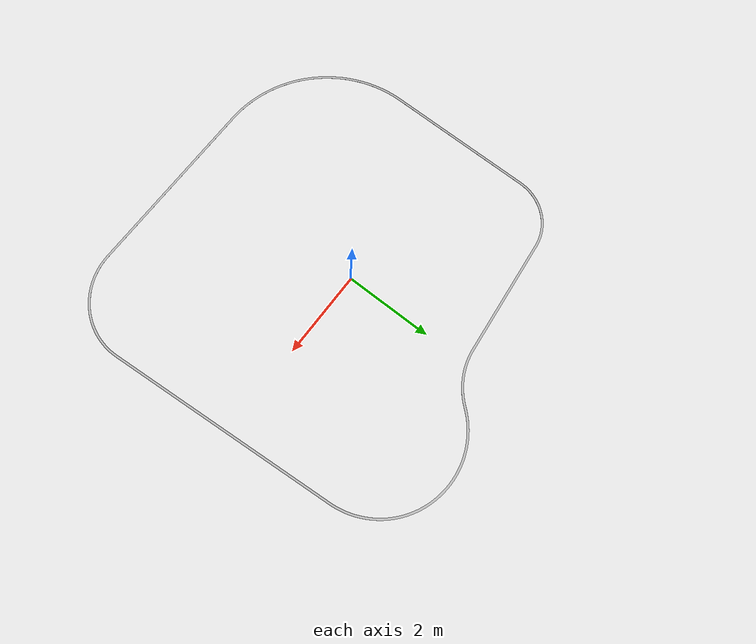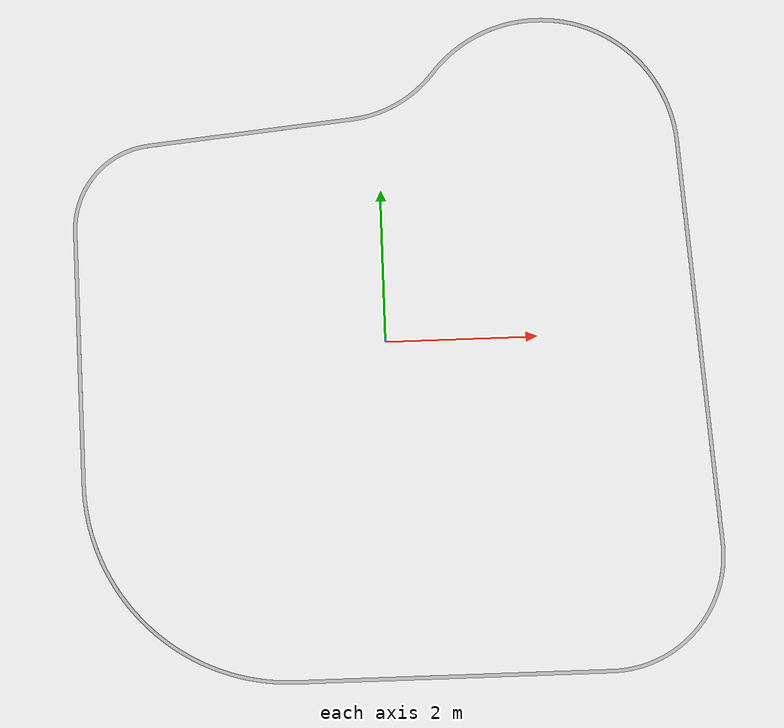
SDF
<?xml version="1.0" ?>
<sdf version="1.5">
  <model name="yellow_line">
    <static>true</static>
    <link name="link">
      <pose>0 0 0 0 0 0</pose>
      <collision name="collision">
        <geometry>
            <mesh>
              <uri>
                model://yellow_line/mesh/yellow_line.stl
              </uri>
              <scale>
                1 1 1
              </scale>
            </mesh>
        </geometry>
      </collision>
      <visual name="visual">
        <cast_shadows>false</cast_shadows>
        <geometry>
            <mesh>
              <uri>
                model://yellow_line/mesh/yellow_line.stl
              </uri>
              <scale>
                1 1 1
              </scale>
            </mesh>
        </geometry>
      </visual>
    </link>
  </model>
</sdf>
